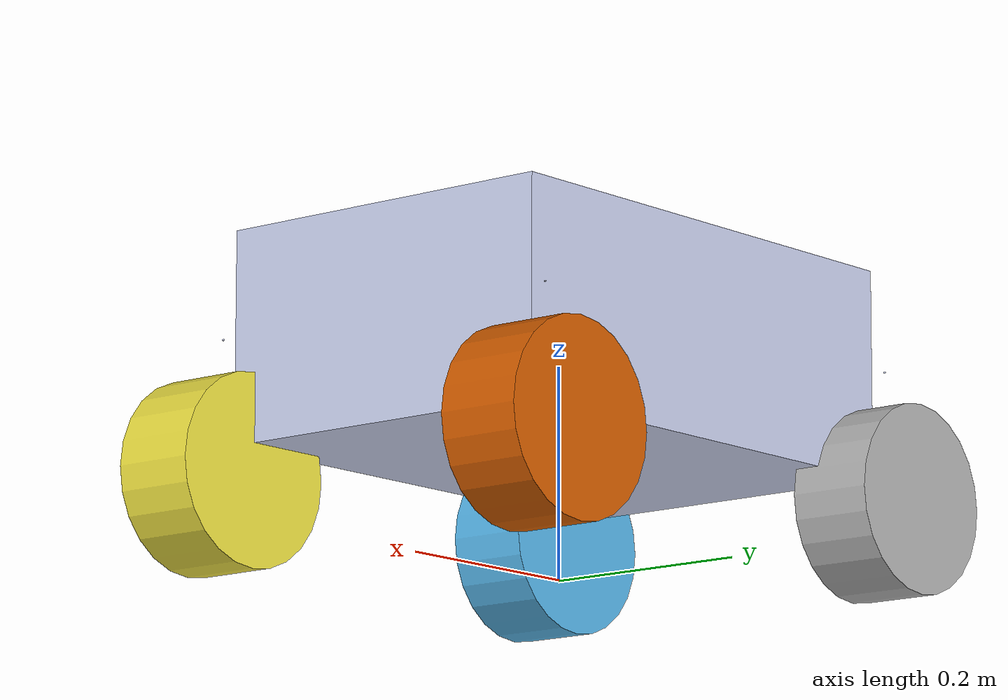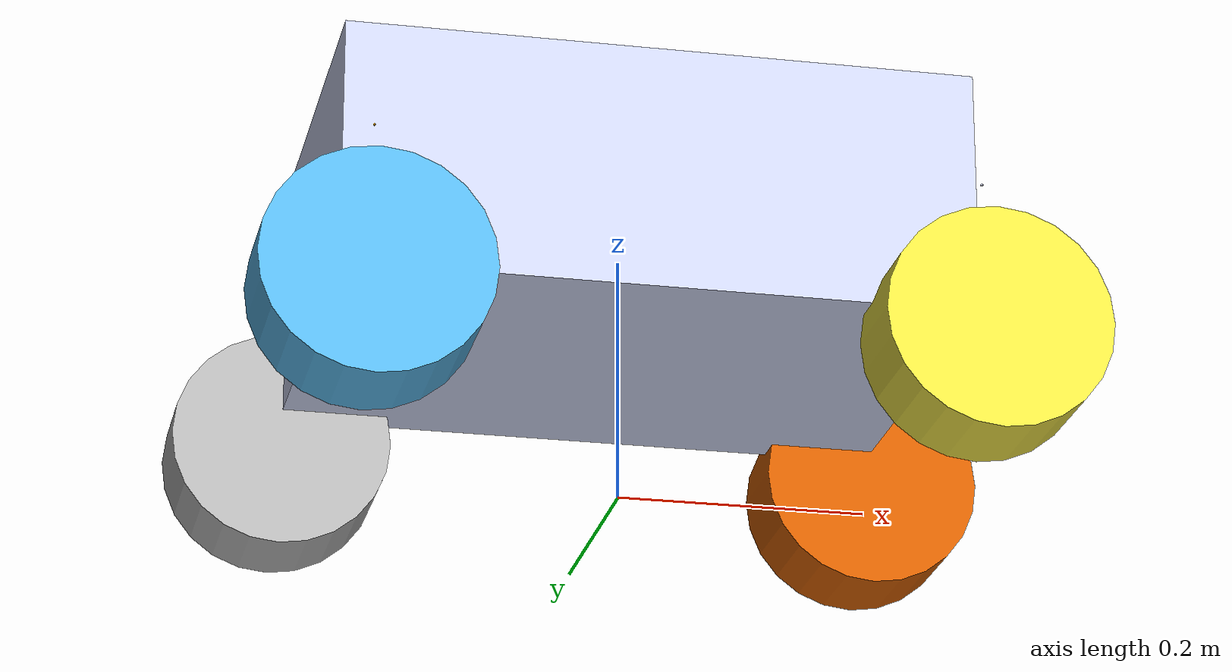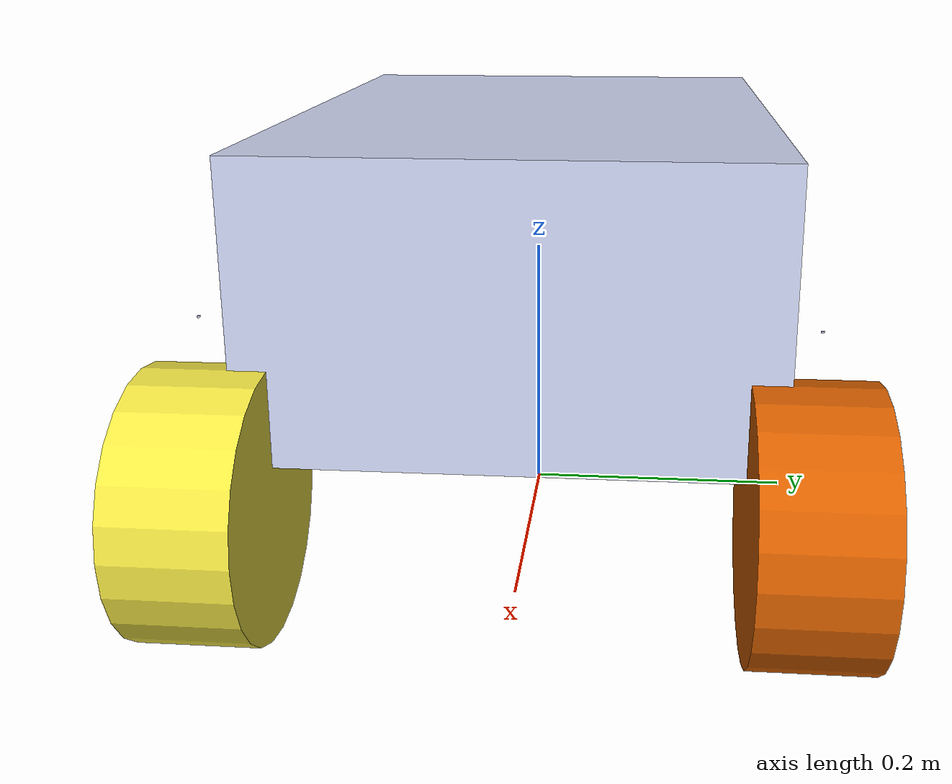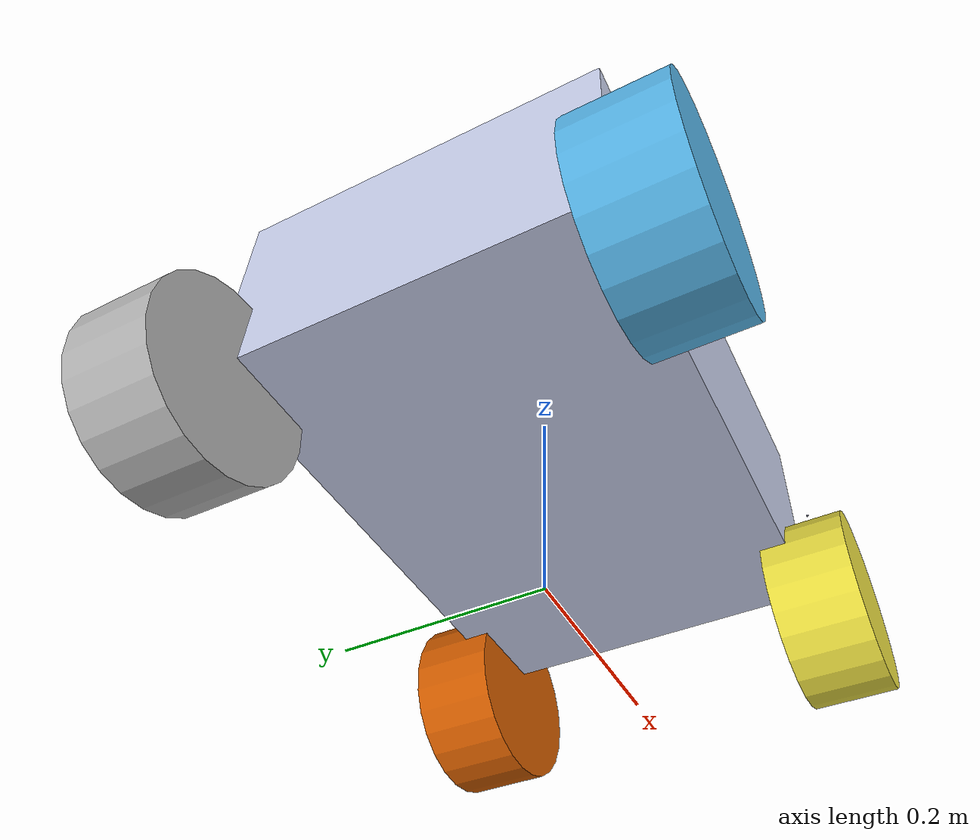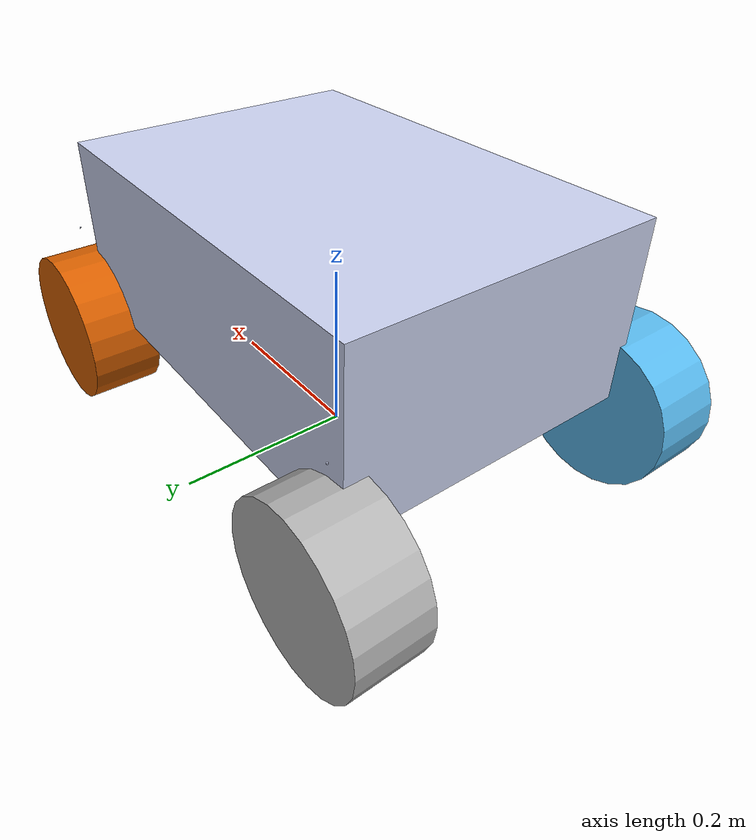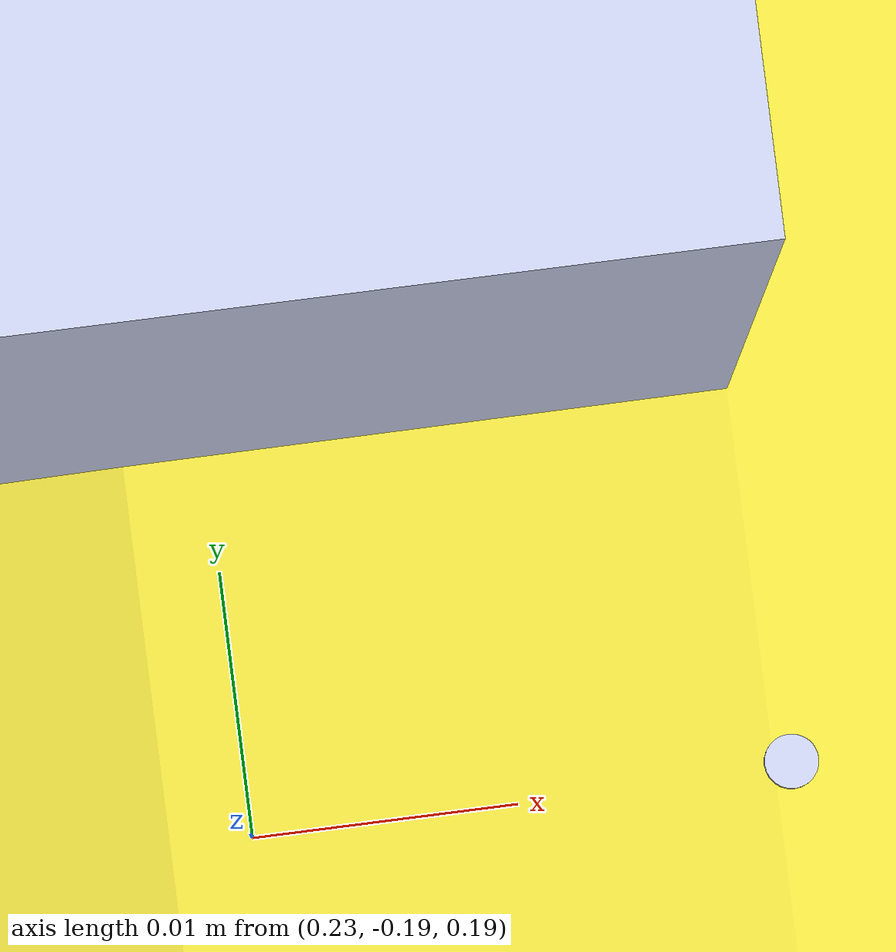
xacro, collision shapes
<?xml version="1.0" encoding="utf-8"?>
<robot name="ranger_mini_v3"  xmlns:xacro="http://ros.org/wiki/xacro">

  <xacro:arg name="use_ros2_control" default="false"/>

  <link name="base_footprint"/>

  <joint name="base_footprint_joint" type="fixed">
    <origin xyz="0 0 0.31" rpy="0 0 0"/>
    <parent link="base_footprint"/>
    <child link="base_link"/>
  </joint>

  <link
    name="base_link">
    <inertial>
      <origin
        xyz="-0.0242698272228022 -0.0030308024613212 0.0544267444673498"
        rpy="0 0 0" />
      <mass
        value="10" />
      <inertia ixx="0.1354" ixy="0.0" ixz="0.0" iyy="0.2417" iyz="0.0" izz="0.3085"/>
    </inertial>
    <visual>
      <origin
        xyz="0 0 0.0"
        rpy="0 0 0" />
      <geometry>
        <mesh
          filename="package://ranger_mini_v3/meshes/ranger_base.dae" scale="1000 1000 1000" />
      </geometry>
      <material
        name="">
        <color
          rgba="0.792156862745098 0.819607843137255 0.933333333333333 1" />
      </material>
    </visual>
        <collision>
            <origin xyz="0 0 -0.1" rpy="0 0 0" />
            <geometry>
                <box size="0.5 0.35 0.2"/>
            </geometry>
        </collision>
   </link>
   <link
    name="fr_steering_wheel_link">
    <inertial>
      <origin
        xyz="1.8493E-05 1.2713E-06 0.043679"
        rpy="0 0 0" />
      <mass
        value="1" />
      <inertia
        ixx="0.0063625"
        ixy="-1.0581E-07"
        ixz="-4.0831E-07"
        iyy="0.006363"
        iyz="-3.4944E-08"
        izz="0.010465" />
    </inertial>
    <visual>
      <origin
        xyz="0 0 0"
        rpy="0 0 0" />
      <geometry>
        <mesh filename="package://ranger_mini_v3/meshes/steering_wheel.dae" scale="10 10 10"/>
      </geometry>
      <material
        name="">
        <color
          rgba="0.79216 0.81961 0.93333 1" />
      </material>
    </visual>
    <collision>
      <origin
        xyz="0 0 0"
        rpy="0 0 0" />
      <geometry>
          <cylinder radius="0.001" length="0.001"/>
      </geometry>
    </collision>
  </link>
  <joint
    name="fr_steering_joint"
    type="revolute">
    <origin
      xyz="0.25 -0.19 -0.1"
      rpy="0 0 0" />
    <parent
      link="base_link" />
    <child
      link="fr_steering_wheel_link" />
    <axis
      xyz="0 0 1" />
    <limit effort="5" velocity="6.28"  lower="-2.1" upper="2.1" />

  </joint>

  <link name="fr_wheel_link">
      <inertial>
          <mass value="8" />
          <origin xyz="0 0 0" />
          <inertia ixx="0.02047" ixy="0.0" ixz="0.0" iyy="0.02047" iyz="0.0" izz="0.0324"/>
          </inertial>
      <visual>
          <origin xyz="0 0 0" rpy="3.14 0 0" />
          <geometry>
            <mesh filename="package://ranger_mini_v3/meshes/wheel_v3.dae" scale="10 10 10"/>
          </geometry>
      </visual>
      <collision>
          <origin xyz="0 0 -0.005" rpy="1.57 0 0" />
          <geometry>
              <cylinder length="0.08" radius="0.09" />
          </geometry>
                <contact>
                    <ode>
                  <min_depth>0.001</min_depth>
                    </ode>
              </contact>
      </collision>
  </link>

        <joint name="fr_wheel" type="continuous">
            <origin xyz="0.0 0.0 -0.12" rpy="0 0 0" />
            <parent link="fr_steering_wheel_link"/>
            <child link="fr_wheel_link"/>
            <axis xyz="0 1 0" rpy="0 0 0" />
        </joint>

  <link
    name="fl_steering_wheel_link">
    <inertial>
      <origin
        xyz="-0.0017956 -9.6304E-08 0.043642"
        rpy="0 0 0" />
      <mass
        value="1" />
      <inertia
        ixx="0.0063695"
        ixy="-2.1067E-08"
        ixz="-0.00016867"
        iyy="0.006363"
        iyz="-1.0301E-08"
        izz="0.010458" />
    </inertial>
    <visual>
      <origin
        xyz="0 0 0"
        rpy="0 0 3.14" />
      <geometry>
        <mesh filename="package://ranger_mini_v3/meshes/steering_wheel.dae" scale="10 10 10"/>
      </geometry>
      <material
        name="">
        <color
          rgba="0.79216 0.81961 0.93333 1" />
      </material>
    </visual>
    <collision>
      <origin
        xyz="0 0 0"
        rpy="0 0 0" />
      <geometry>
        <cylinder radius="0.001" length="0.001"/>
      </geometry>
    </collision>
  </link>
   <joint
    name="fl_steering_joint"
    type="revolute">
    <origin
      xyz="0.25 0.19 -0.1"
      rpy="0 0 0" />
    <parent
      link="base_link" />
    <child
      link="fl_steering_wheel_link" />
    <axis
      xyz="0 0 1" />
        <limit effort="5" velocity="6.28"  lower="-2.1" upper="2.1" />

  </joint>

        <link name="fl_wheel_link">
            <inertial>
                <mass value="8" />
                <origin xyz="0 0 0" />
                <inertia ixx="0.02047" ixy="0.0" ixz="0.0" iyy="0.02047" iyz="0.0" izz="0.0324"/>
            </inertial>
            <visual>
                <origin xyz="0 0 0" rpy="0 0 0" />
                <geometry>
                <mesh filename="package://ranger_mini_v3/meshes/wheel_v3.dae" scale="10 10 10"/>
                </geometry>
            </visual>
            <collision>
                <origin xyz="0 0 -0.005" rpy="1.57 0 0" />
                <geometry>
                    <cylinder length="0.08" radius="0.09" />
                </geometry>
                     <contact>
                         <ode>
                        <min_depth>0.001</min_depth>
                         </ode>
                    </contact>
            </collision>
        </link>

        <joint name="fl_wheel" type="continuous">
            <origin xyz="0.0 0.0 -0.12" rpy="0 0 0" />
            <parent link="fl_steering_wheel_link"/>
            <child link="fl_wheel_link"/>
            <axis xyz="0 1 0" rpy="0 0 0" />
        </joint>

 <link
    name="rl_steering_wheel_link">
    <inertial>
      <origin
        xyz="-0.00017093 6.1255E-08 0.043678"
        rpy="0 0 0" />
      <mass
        value="1" />
      <inertia
        ixx="0.0063627"
        ixy="-2.1069E-08"
        ixz="-1.587E-05"
        iyy="0.006363"
        iyz="9.3201E-09"
        izz="0.010465" />
    </inertial>
    <visual>
      <origin
        xyz="0 0 0"
        rpy="0 0 3.14" />
      <geometry>
        <mesh filename="package://ranger_mini_v3/meshes/steering_wheel.dae" scale="10 10 10"/>
      </geometry>
      <material
        name="">
        <color
          rgba="0.79216 0.81961 0.93333 1" />
      </material>
    </visual>
    <collision>
      <origin
        xyz="0 0 0"
        rpy="0 0 0" />
      <geometry>
        <cylinder radius="0.001" length="0.001"/>
      </geometry>
    </collision>
  </link>

  <joint
    name="rl_steering_joint"
    type="revolute">
    <origin
      xyz="-0.25 0.19 -0.1"
      rpy="0 0 0" />
    <parent
      link="base_link" />
    <child
      link="rl_steering_wheel_link" />
    <axis
      xyz="0 0 1" />
        <limit effort="5" velocity="6.28"  lower="-2.1" upper="2.1" />
  </joint>

        <link name="rl_wheel_link">
            <inertial>
                <mass value="8" />
                <origin xyz="0 0 0" />
                <inertia ixx="0.02047" ixy="0.0" ixz="0.0" iyy="0.02047" iyz="0.0" izz="0.0324"/>
            </inertial>
            <visual>
                <origin xyz="0 0 0" rpy="0 0 0" />
                <geometry>
                  <mesh filename="package://ranger_mini_v3/meshes/wheel_v3.dae" scale="10 10 10"/>
                </geometry>
            </visual>
            <collision>
                <origin xyz="0.00 0.00 -0.005" rpy="1.57 0 0" />
                <geometry>
                    <cylinder length="0.08" radius="0.09" />
                </geometry>
                     <contact>
                         <ode>
                        <min_depth>0.001</min_depth>
                         </ode>
                    </contact>
            </collision>
        </link>

        <joint name="rl_wheel" type="continuous">
            <origin xyz="0.0 0.0 -0.12 " rpy="0 0 0" />
            <parent link="rl_steering_wheel_link"/>
            <child link="rl_wheel_link"/>
            <axis xyz="0 1 0" rpy="0 0 0" />
        </joint>

   <link name="rr_steering_wheel_link">
        <inertial>
            <origin xyz="0.0 0.0 0.0"/>
            <mass value="1"/>
            <inertia ixx="0.01" ixy="0.0" ixz="0.0" iyy="0.01" iyz="0.0" izz="0.01"/>
        </inertial>
        <visual>
          <origin
            xyz="0 0 0"
            rpy="0 0 0" />
          <geometry>
            <mesh filename="package://ranger_mini_v3/meshes/steering_wheel.dae" scale="10 10 10"/>
          </geometry>
        </visual>
        <collision>
            <origin  xyz="0 0 0" rpy="0 0 0" />
                    <geometry>
                <cylinder radius="0.001" length="0.001"/>
            </geometry>
        </collision>
    </link>
    <joint name="rr_steering_joint" type="revolute">
        <origin xyz="-0.23 -0.206 -0.1" rpy="0 0 0" />
        <parent link="base_link"/>
        <child link="rr_steering_wheel_link"/>
        <axis xyz="0 0 1" rpy="0 0 0" />
        <limit effort="5" velocity="6.28"  lower="-2.1" upper="2.1" />
    </joint>

       <link name="rr_wheel_link">
            <inertial>
                <mass value="8" />
                <origin xyz="0 0 0" />
                <inertia ixx="0.02047" ixy="0.0" ixz="0.0" iyy="0.02047" iyz="0.0" izz="0.0324"/>
            </inertial>
            <visual>
                <origin xyz="0.0 0.0 0.0" rpy="3.14 0 0" />
                <geometry>
                    <mesh filename="package://ranger_mini_v3/meshes/wheel_v3.dae" scale="10 10 10"/>
                </geometry>
            </visual>
            <collision>
                <origin xyz="0.0 0.0 -0.005" rpy="1.57 0 0" />
                <geometry>
                    <cylinder length="0.08" radius="0.09" />
                </geometry>
                     <contact>
                         <ode>
                        <min_depth>0.001</min_depth>
                         </ode>
                    </contact>
            </collision>
        </link>

        <joint name="rr_wheel" type="continuous">
            <origin xyz="0.0 0.0 -0.12 " rpy="0 0 0" />
            <parent link="rr_steering_wheel_link"/>
            <child link="rr_wheel_link"/>
            <axis xyz="0 1 0" rpy="0 0 0" />
        </joint>

  <xacro:macro name="wheel_surface" params="link_name">
    <gazebo reference="${link_name}">
      <mu1>1.2</mu1>
      <mu2>1.2</mu2>
      <kp>1000000.0</kp>
      <kd>10.0</kd>
      <minDepth>0.001</minDepth>
      <maxVel>0.1</maxVel>
    </gazebo>
  </xacro:macro>

  <xacro:wheel_surface link_name="fl_wheel_link"/>
  <xacro:wheel_surface link_name="fr_wheel_link"/>
  <xacro:wheel_surface link_name="rl_wheel_link"/>
  <xacro:wheel_surface link_name="rr_wheel_link"/>

  <xacro:if value="$(arg use_ros2_control)">
    <ros2_control name="GazeboSystem" type="system">
      <hardware>
        <plugin>gazebo_ros2_control/GazeboSystem</plugin>
      </hardware>

      <joint name="fl_steering_joint">
        <command_interface name="position">
          <param name="min">-2.1</param>
          <param name="max">2.1</param>
        </command_interface>
        <state_interface name="position"/>
        <state_interface name="velocity"/>
      </joint>
      <joint name="fr_steering_joint">
        <command_interface name="position">
          <param name="min">-2.1</param>
          <param name="max">2.1</param>
        </command_interface>
        <state_interface name="position"/>
        <state_interface name="velocity"/>
      </joint>
      <joint name="rl_steering_joint">
        <command_interface name="position">
          <param name="min">-2.1</param>
          <param name="max">2.1</param>
        </command_interface>
        <state_interface name="position"/>
        <state_interface name="velocity"/>
      </joint>
      <joint name="rr_steering_joint">
        <command_interface name="position">
          <param name="min">-2.1</param>
          <param name="max">2.1</param>
        </command_interface>
        <state_interface name="position"/>
        <state_interface name="velocity"/>
      </joint>

      <joint name="fl_wheel">
        <command_interface name="velocity">
          <param name="min">-25.0</param>
          <param name="max">25.0</param>
        </command_interface>
        <state_interface name="position"/>
        <state_interface name="velocity"/>
      </joint>
      <joint name="fr_wheel">
        <command_interface name="velocity">
          <param name="min">-25.0</param>
          <param name="max">25.0</param>
        </command_interface>
        <state_interface name="position"/>
        <state_interface name="velocity"/>
      </joint>
      <joint name="rl_wheel">
        <command_interface name="velocity">
          <param name="min">-25.0</param>
          <param name="max">25.0</param>
        </command_interface>
        <state_interface name="position"/>
        <state_interface name="velocity"/>
      </joint>
      <joint name="rr_wheel">
        <command_interface name="velocity">
          <param name="min">-25.0</param>
          <param name="max">25.0</param>
        </command_interface>
        <state_interface name="position"/>
        <state_interface name="velocity"/>
      </joint>
    </ros2_control>

    <gazebo>
      <plugin filename="libgazebo_ros2_control.so" name="gazebo_ros2_control">
        <parameters>$(find ranger_mini_v3)/config/ranger_mini_joint.yaml</parameters>
      </plugin>
    </gazebo>
  </xacro:if>

</robot>
